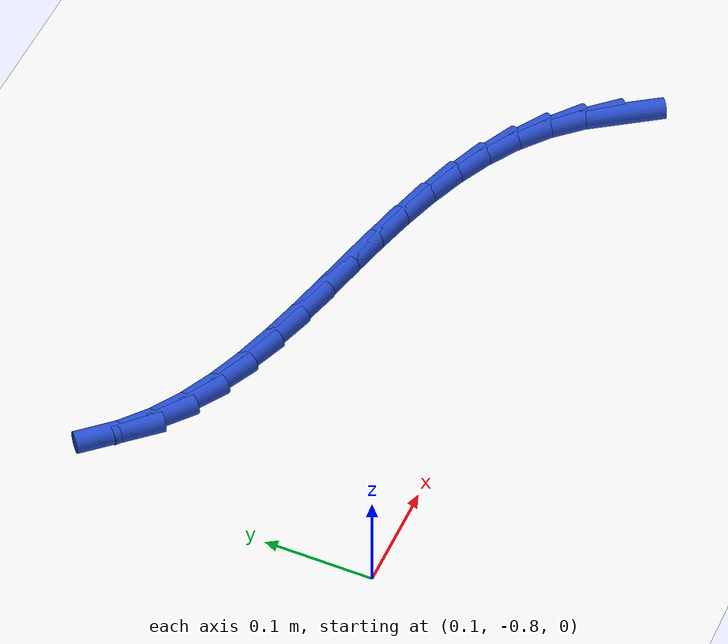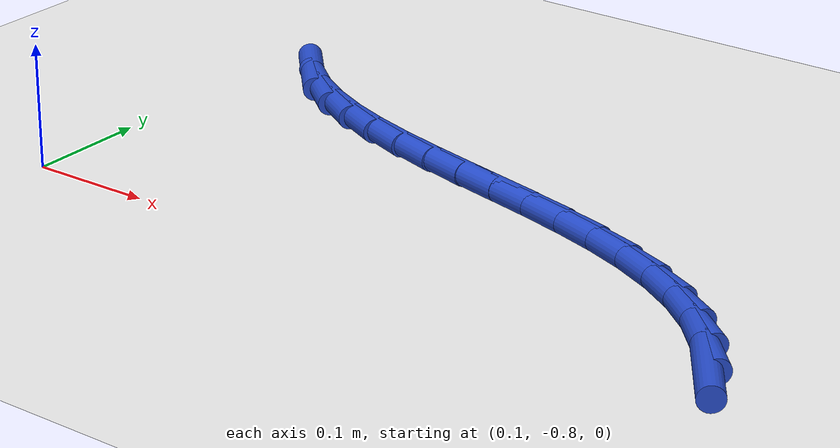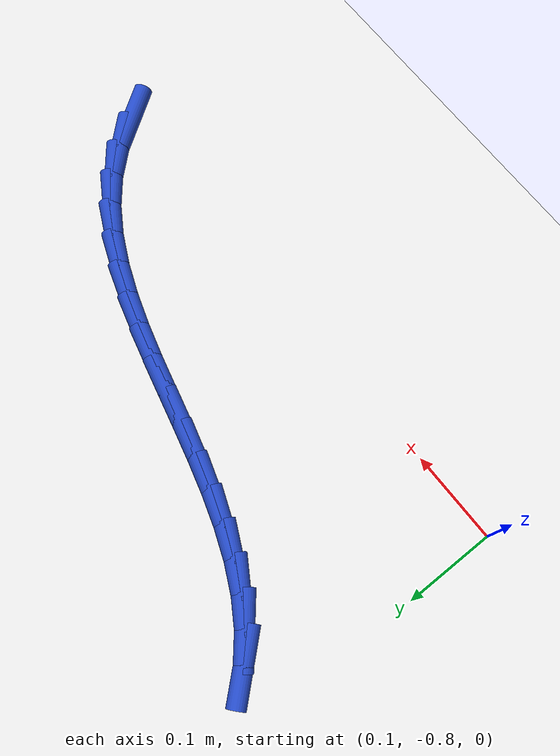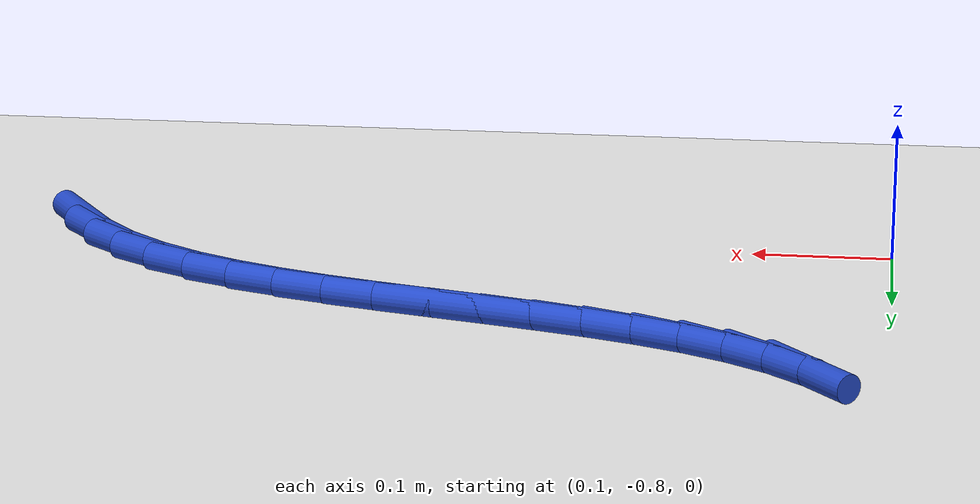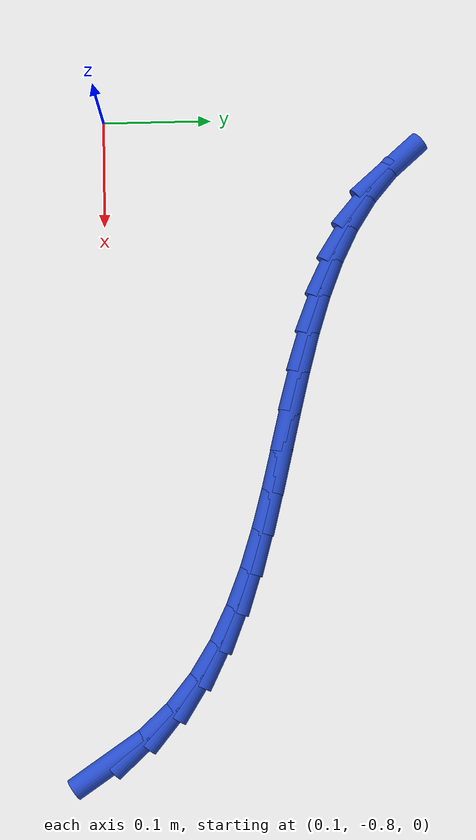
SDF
<sdf version="1.6">
 <world name="default">
  <model name="ground_plane">
   <static>1</static>
   <link name="link">
    <collision name="collision">
     <geometry><plane><normal>0 0 1</normal><size>100 100</size></plane></geometry>
     <surface><friction><ode><mu>100</mu><mu2>50</mu2></ode></friction></surface>
    </collision>
    <visual name="visual">
     <cast_shadows>0</cast_shadows>
     <geometry><plane><normal>0 0 1</normal><size>100 100</size></plane></geometry>
     <material>
      <script><uri>file://media/materials/scripts/gazebo.material</uri><name>Gazebo/WhiteGlow</name></script>
     </material>
    </visual>
   </link>
  </model>
  <model name="line">
   <link name="link_187">
    <pose>0.6869445150598528 -0.797226698640107 0.01 0 1.57 -0.9790546621594385</pose>
    <collision name="collision">
     <geometry><cylinder><radius>0.01</radius><length>0.08</length></cylinder></geometry>
    </collision>
    <visual name="visual">
     <material>
      <script><name>Gazebo/Blue</name><uri>file://media/materials/scripts/gazebo.material</uri></script>
     </material>
     <geometry><cylinder><radius>0.01</radius><length>0.08</length></cylinder></geometry>
    </visual>
   </link>
   <link name="link_188">
    <pose>0.666580683228289 -0.7669270321069155 0.01 0 1.57 -0.8294294372255341</pose>
    <collision name="collision">
     <geometry><cylinder><radius>0.01</radius><length>0.08</length></cylinder></geometry>
    </collision>
    <visual name="visual">
     <material>
      <script><name>Gazebo/Blue</name><uri>file://media/materials/scripts/gazebo.material</uri></script>
     </material>
     <geometry><cylinder><radius>0.01</radius><length>0.08</length></cylinder></geometry>
    </visual>
   </link>
   <link name="link_189">
    <pose>0.6427892470301076 -0.740942478169188 0.01 0 1.57 -0.6853961596319496</pose>
    <collision name="collision">
     <geometry><cylinder><radius>0.01</radius><length>0.08</length></cylinder></geometry>
    </collision>
    <visual name="visual">
     <material>
      <script><name>Gazebo/Blue</name><uri>file://media/materials/scripts/gazebo.material</uri></script>
     </material>
     <geometry><cylinder><radius>0.01</radius><length>0.08</length></cylinder></geometry>
    </visual>
   </link>
   <link name="link_190">
    <pose>0.6158774914167722 -0.7189387414416878 0.01 0 1.57 -0.5597230754778926</pose>
    <collision name="collision">
     <geometry><cylinder><radius>0.01</radius><length>0.08</length></cylinder></geometry>
    </collision>
    <visual name="visual">
     <material>
      <script><name>Gazebo/Blue</name><uri>file://media/materials/scripts/gazebo.material</uri></script>
     </material>
     <geometry><cylinder><radius>0.01</radius><length>0.08</length></cylinder></geometry>
    </visual>
   </link>
   <link name="link_191">
    <pose>0.5862784778422279 -0.7003930701928838 0.01 0 1.57 -0.45567348686658093</pose>
    <collision name="collision">
     <geometry><cylinder><radius>0.01</radius><length>0.08</length></cylinder></geometry>
    </collision>
    <visual name="visual">
     <material>
      <script><name>Gazebo/Blue</name><uri>file://media/materials/scripts/gazebo.material</uri></script>
     </material>
     <geometry><cylinder><radius>0.01</radius><length>0.08</length></cylinder></geometry>
    </visual>
   </link>
   <link name="link_192">
    <pose>0.5544252677604171 -0.6847827126912426 0.01 0 1.57 -0.3735252738418335</pose>
    <collision name="collision">
     <geometry><cylinder><radius>0.01</radius><length>0.08</length></cylinder></geometry>
    </collision>
    <visual name="visual">
     <material>
      <script><name>Gazebo/Blue</name><uri>file://media/materials/scripts/gazebo.material</uri></script>
     </material>
     <geometry><cylinder><radius>0.01</radius><length>0.08</length></cylinder></geometry>
    </visual>
   </link>
   <link name="link_193">
    <pose>0.5207509226252846 -0.6715849172052321 0.01 0 1.57 -0.3119782506139123</pose>
    <collision name="collision">
     <geometry><cylinder><radius>0.01</radius><length>0.08</length></cylinder></geometry>
    </collision>
    <visual name="visual">
     <material>
      <script><name>Gazebo/Blue</name><uri>file://media/materials/scripts/gazebo.material</uri></script>
     </material>
     <geometry><cylinder><radius>0.01</radius><length>0.08</length></cylinder></geometry>
    </visual>
   </link>
   <link name="link_194">
    <pose>0.4856885038907736 -0.6602769320033199 0.01 0 1.57 -0.26929865068107944</pose>
    <collision name="collision">
     <geometry><cylinder><radius>0.01</radius><length>0.08</length></cylinder></geometry>
    </collision>
    <visual name="visual">
     <material>
      <script><name>Gazebo/Blue</name><uri>file://media/materials/scripts/gazebo.material</uri></script>
     </material>
     <geometry><cylinder><radius>0.01</radius><length>0.08</length></cylinder></geometry>
    </visual>
   </link>
   <link name="link_195">
    <pose>0.4496710730108273 -0.6503360053539731 0.01 0 1.57 -0.24399381207730528</pose>
    <collision name="collision">
     <geometry><cylinder><radius>0.01</radius><length>0.08</length></cylinder></geometry>
    </collision>
    <visual name="visual">
     <material>
      <script><name>Gazebo/Blue</name><uri>file://media/materials/scripts/gazebo.material</uri></script>
     </material>
     <geometry><cylinder><radius>0.01</radius><length>0.08</length></cylinder></geometry>
    </visual>
   </link>
   <link name="link_196">
    <pose>0.41313169143939116 -0.64123938552566 0.01 0 1.57 -0.23513913215714347</pose>
    <collision name="collision">
     <geometry><cylinder><radius>0.01</radius><length>0.08</length></cylinder></geometry>
    </collision>
    <visual name="visual">
     <material>
      <script><name>Gazebo/Blue</name><uri>file://media/materials/scripts/gazebo.material</uri></script>
     </material>
     <geometry><cylinder><radius>0.01</radius><length>0.08</length></cylinder></geometry>
    </visual>
   </link>
   <link name="link_197">
    <pose>0.37650342063040837 -0.6324643207868476 0.01 0 1.57 -0.24251908378214476</pose>
    <collision name="collision">
     <geometry><cylinder><radius>0.01</radius><length>0.08</length></cylinder></geometry>
    </collision>
    <visual name="visual">
     <material>
      <script><name>Gazebo/Blue</name><uri>file://media/materials/scripts/gazebo.material</uri></script>
     </material>
     <geometry><cylinder><radius>0.01</radius><length>0.08</length></cylinder></geometry>
    </visual>
   </link>
   <link name="link_198">
    <pose>0.3402193220378224 -0.6234880594060036 0.01 0 1.57 -0.26668503187641845</pose>
    <collision name="collision">
     <geometry><cylinder><radius>0.01</radius><length>0.08</length></cylinder></geometry>
    </collision>
    <visual name="visual">
     <material>
      <script><name>Gazebo/Blue</name><uri>file://media/materials/scripts/gazebo.material</uri></script>
     </material>
     <geometry><cylinder><radius>0.01</radius><length>0.08</length></cylinder></geometry>
    </visual>
   </link>
   <link name="link_199">
    <pose>0.3047124571155765 -0.6137878496515954 0.01 0 1.57 -0.30896239477920784</pose>
    <collision name="collision">
     <geometry><cylinder><radius>0.01</radius><length>0.08</length></cylinder></geometry>
    </collision>
    <visual name="visual">
     <material>
      <script><name>Gazebo/Blue</name><uri>file://media/materials/scripts/gazebo.material</uri></script>
     </material>
     <geometry><cylinder><radius>0.01</radius><length>0.08</length></cylinder></geometry>
    </visual>
   </link>
   <link name="link_200">
    <pose>0.2704158873176161 -0.6028409397920909 0.01 0 1.57 -0.37136710310758775</pose>
    <collision name="collision">
     <geometry><cylinder><radius>0.01</radius><length>0.08</length></cylinder></geometry>
    </collision>
    <visual name="visual">
     <material>
      <script><name>Gazebo/Blue</name><uri>file://media/materials/scripts/gazebo.material</uri></script>
     </material>
     <geometry><cylinder><radius>0.01</radius><length>0.08</length></cylinder></geometry>
    </visual>
   </link>
   <link name="link_201">
    <pose>0.23776267409788418 -0.5901245780959575 0.01 0 1.57 -0.4562994111850291</pose>
    <collision name="collision">
     <geometry><cylinder><radius>0.01</radius><length>0.08</length></cylinder></geometry>
    </collision>
    <visual name="visual">
     <material>
      <script><name>Gazebo/Blue</name><uri>file://media/materials/scripts/gazebo.material</uri></script>
     </material>
     <geometry><cylinder><radius>0.01</radius><length>0.08</length></cylinder></geometry>
    </visual>
   </link>
   <link name="link_202">
    <pose>0.20718587891032456 -0.5751160128316629 0.01 0 1.57 -0.5657777095345812</pose>
    <collision name="collision">
     <geometry><cylinder><radius>0.01</radius><length>0.08</length></cylinder></geometry>
    </collision>
    <visual name="visual">
     <material>
      <script><name>Gazebo/Blue</name><uri>file://media/materials/scripts/gazebo.material</uri></script>
     </material>
     <geometry><cylinder><radius>0.01</radius><length>0.08</length></cylinder></geometry>
    </visual>
   </link>
   <link name="link_203">
    <pose>0.17911856320888034 -0.5572924922676737 0.01 0 1.57 -0.6999233085796901</pose>
    <collision name="collision">
     <geometry><cylinder><radius>0.01</radius><length>0.08</length></cylinder></geometry>
    </collision>
    <visual name="visual">
     <material>
      <script><name>Gazebo/Blue</name><uri>file://media/materials/scripts/gazebo.material</uri></script>
     </material>
     <geometry><cylinder><radius>0.01</radius><length>0.08</length></cylinder></geometry>
    </visual>
   </link>
   <link name="link_204">
    <pose>0.1539927645632331 -0.5361326178012152 0.01 0 1.57 -0.8443701849110495</pose>
    <collision name="collision">
     <geometry><cylinder><radius>0.01</radius><length>0.08</length></cylinder></geometry>
    </collision>
    <visual name="visual">
     <material>
      <script><name>Gazebo/Blue</name><uri>file://media/materials/scripts/gazebo.material</uri></script>
     </material>
     <geometry><cylinder><radius>0.01</radius><length>0.08</length></cylinder></geometry>
    </visual>
   </link>
  </model>
 </world>
</sdf>
